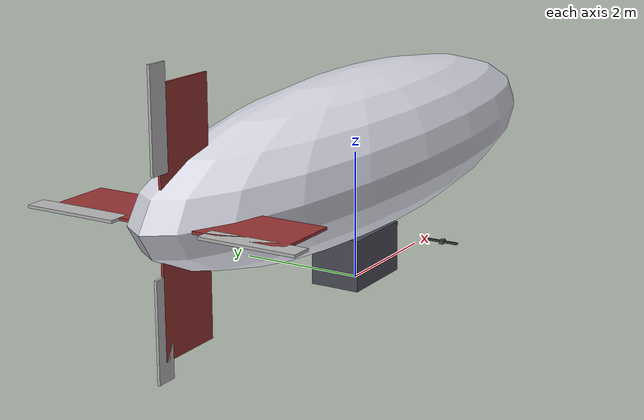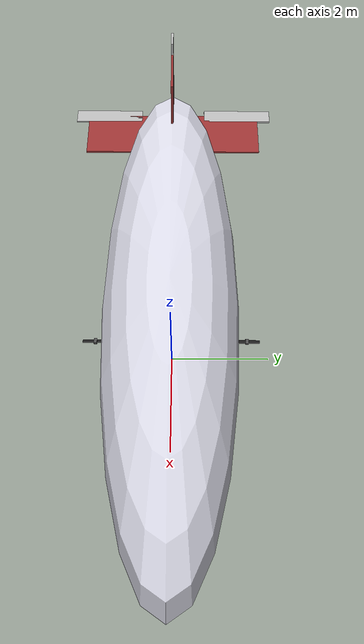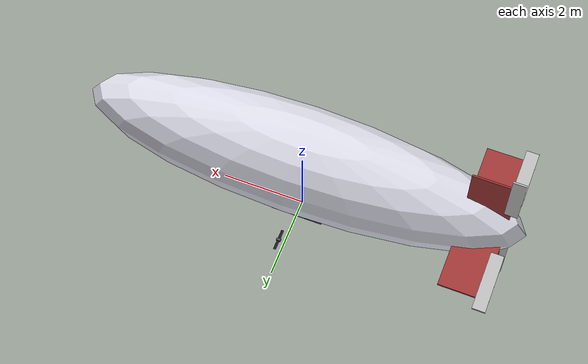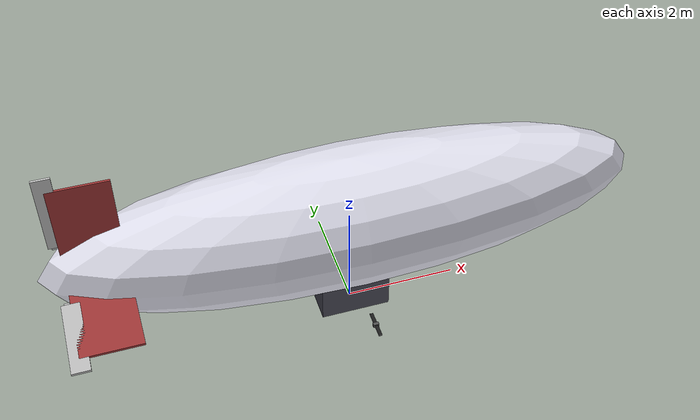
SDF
<?xml version="1.0" encoding="UTF-8"?>
<!--
  The fixed-thruster airship with hull drag and rotational damping: the drag
  block of airship_vectored_independent_drag, on airship_fixed. No added
  mass; airship_fixed_am_drag has both.
-->
<sdf version="1.10">
  <model name="airship_fixed_drag">
    <include merge="true">
      <uri>model://airship_fixed</uri>
    </include>
    <plugin filename="gz-sim-hydrodynamics-system" name="gz::sim::systems::Hydrodynamics">
      <link_name>base_link</link_name>
      <!-- Quadratic drag [N/(m/s)^2] -->
      <xUabsU>-0.2309</xUabsU>
      <yVabsV>-7.9926</yVabsV>
      <zWabsW>-7.9926</zWabsW>
      <!-- Rotational damping [N m/(rad/s)^2], with the linear roll term the
           very lightly damped roll mode needs [N m/(rad/s)] -->
      <kP>-6.4646</kP>
      <kPabsP>-29.0908</kPabsP>
      <mQabsQ>-193.9384</mQabsQ>
      <nRabsR>-193.9384</nRabsR>
      <xQabsU>-0.9467</xQabsU>
      <yPabsV>32.7697</yPabsV>
      <mUabsU>-0.4733</mUabsU>
      <mQabsU>-1.9407</mQabsU>
      <kVabsV>16.3848</kVabsV>
      <kPabsV>-67.1778</kPabsV>
      <disable_added_mass>true</disable_added_mass>
    </plugin>
  </model>
</sdf>

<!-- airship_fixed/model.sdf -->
<sdf version="1.10">
  <model name="airship_fixed">
    <include merge="true">
      <uri>model://airship_base</uri>
    </include>
    <link name="pod_starboard">
      <pose>0 -1.5 0.8125 0 0 0</pose>
      <inertial>
        <mass>0.398</mass>
        <inertia>
          <ixx>0.001</ixx>
          <iyy>0.001</iyy>
          <izz>0.001</izz>
        </inertia>
      </inertial>
      <visual name="pod_starboard_visual">
        <geometry>
          <box>
            <size>0.10 0.06 0.06</size>
          </box>
        </geometry>
        <material>
          <ambient>0.3 0.3 0.3 1</ambient>
          <diffuse>0.3 0.3 0.3 1</diffuse>
        </material>
      </visual>
    </link>
    <joint name="mount_starboard_joint" type="fixed">
      <parent>base_link</parent>
      <child>pod_starboard</child>
    </joint>
    <link name="prop_starboard">
      <pose degrees="true">0 -1.5 0.8125 0 90 0</pose>
      <inertial>
        <mass>0.1</mass>
        <inertia>
          <ixx>0.001</ixx>
          <iyy>0.001</iyy>
          <izz>0.001</izz>
        </inertia>
      </inertial>
      <visual name="prop_starboard_visual">
        <geometry>
          <box>
            <size>0.02 0.5 0.06</size>
          </box>
        </geometry>
        <material>
          <ambient>0.1 0.1 0.1 1</ambient>
          <diffuse>0.1 0.1 0.1 1</diffuse>
        </material>
      </visual>
    </link>
    <joint name="prop_starboard_joint" type="revolute">
      <parent>pod_starboard</parent>
      <child>prop_starboard</child>
      <axis>
        <xyz>0 0 1</xyz>
        <limit>
          <lower>-1e+16</lower>
          <upper>1e+16</upper>
        </limit>
        <dynamics>
          <spring_reference>0</spring_reference>
          <spring_stiffness>0</spring_stiffness>
        </dynamics>
      </axis>
    </joint>
    <link name="pod_port">
      <pose>0 1.5 0.8125 0 0 0</pose>
      <inertial>
        <mass>0.398</mass>
        <inertia>
          <ixx>0.001</ixx>
          <iyy>0.001</iyy>
          <izz>0.001</izz>
        </inertia>
      </inertial>
      <visual name="pod_port_visual">
        <geometry>
          <box>
            <size>0.10 0.06 0.06</size>
          </box>
        </geometry>
        <material>
          <ambient>0.3 0.3 0.3 1</ambient>
          <diffuse>0.3 0.3 0.3 1</diffuse>
        </material>
      </visual>
    </link>
    <joint name="mount_port_joint" type="fixed">
      <parent>base_link</parent>
      <child>pod_port</child>
    </joint>
    <link name="prop_port">
      <pose degrees="true">0 1.5 0.8125 0 90 0</pose>
      <inertial>
        <mass>0.1</mass>
        <inertia>
          <ixx>0.001</ixx>
          <iyy>0.001</iyy>
          <izz>0.001</izz>
        </inertia>
      </inertial>
      <visual name="prop_port_visual">
        <geometry>
          <box>
            <size>0.02 0.5 0.06</size>
          </box>
        </geometry>
        <material>
          <ambient>0.1 0.1 0.1 1</ambient>
          <diffuse>0.1 0.1 0.1 1</diffuse>
        </material>
      </visual>
    </link>
    <joint name="prop_port_joint" type="revolute">
      <parent>pod_port</parent>
      <child>prop_port</child>
      <axis>
        <xyz>0 0 1</xyz>
        <limit>
          <lower>-1e+16</lower>
          <upper>1e+16</upper>
        </limit>
        <dynamics>
          <spring_reference>0</spring_reference>
          <spring_stiffness>0</spring_stiffness>
        </dynamics>
      </axis>
    </joint>
    <plugin filename="gz-sim-multicopter-motor-model-system"
            name="gz::sim::systems::MulticopterMotorModel">
      <jointName>prop_starboard_joint</jointName>
      <linkName>prop_starboard</linkName>
      <turningDirection>ccw</turningDirection>
      <timeConstantUp>0.0125</timeConstantUp>
      <timeConstantDown>0.025</timeConstantDown>
      <maxRotVelocity>300.0</maxRotVelocity>
      <motorConstant>0.0002</motorConstant>
      <momentConstant>0.016</momentConstant>
      <commandSubTopic>command/motor_speed</commandSubTopic>
      <motorNumber>0</motorNumber>
      <rotorDragCoefficient>8.06428e-05</rotorDragCoefficient>
      <rollingMomentCoefficient>1e-06</rollingMomentCoefficient>
      <rotorVelocitySlowdownSim>10</rotorVelocitySlowdownSim>
      <motorType>velocity</motorType>
    </plugin>
    <plugin filename="gz-sim-multicopter-motor-model-system"
            name="gz::sim::systems::MulticopterMotorModel">
      <jointName>prop_port_joint</jointName>
      <linkName>prop_port</linkName>
      <turningDirection>cw</turningDirection>
      <timeConstantUp>0.0125</timeConstantUp>
      <timeConstantDown>0.025</timeConstantDown>
      <maxRotVelocity>300.0</maxRotVelocity>
      <motorConstant>0.0002</motorConstant>
      <momentConstant>0.016</momentConstant>
      <commandSubTopic>command/motor_speed</commandSubTopic>
      <motorNumber>1</motorNumber>
      <rotorDragCoefficient>8.06428e-05</rotorDragCoefficient>
      <rollingMomentCoefficient>1e-06</rollingMomentCoefficient>
      <rotorVelocitySlowdownSim>10</rotorVelocitySlowdownSim>
      <motorType>velocity</motorType>
    </plugin>
    <link name="flap_port">
      <pose>-4.65 1.363 2.050 0 0 0</pose>
      <inertial>
        <mass>0.001</mass>
        <inertia>
          <ixx>1e-05</ixx>
          <iyy>1e-05</iyy>
          <izz>1e-05</izz>
        </inertia>
      </inertial>
      <visual name="flap_port_visual">
        <pose>-0.150 0 0 0 0 0</pose>
        <geometry>
          <box>
            <size>0.30 1.40 0.04</size>
          </box>
        </geometry>
        <material>
        </material>
      </visual>
    </link>
    <joint name="flap_port_joint" type="revolute">
      <parent>base_link</parent>
      <child>flap_port</child>
      <axis>
        <xyz>0 1 0</xyz>
        <limit>
          <lower>-0.4363</lower>
          <upper>0.4363</upper>
        </limit>
        <dynamics>
          <damping>0.5</damping>
        </dynamics>
      </axis>
    </joint>
    <plugin filename="gz-sim-joint-position-controller-system"
            name="gz::sim::systems::JointPositionController">
      <joint_name>flap_port_joint</joint_name>
      <sub_topic>servo_1</sub_topic>
      <p_gain>10.0</p_gain>
      <i_gain>0</i_gain>
      <d_gain>0</d_gain>
    </plugin>
    <link name="flap_starboard">
      <pose>-4.65 -1.363 2.050 0 0 0</pose>
      <inertial>
        <mass>0.001</mass>
        <inertia>
          <ixx>1e-05</ixx>
          <iyy>1e-05</iyy>
          <izz>1e-05</izz>
        </inertia>
      </inertial>
      <visual name="flap_starboard_visual">
        <pose>-0.150 0 0 0 0 0</pose>
        <geometry>
          <box>
            <size>0.30 1.40 0.04</size>
          </box>
        </geometry>
        <material>
        </material>
      </visual>
    </link>
    <joint name="flap_starboard_joint" type="revolute">
      <parent>base_link</parent>
      <child>flap_starboard</child>
      <axis>
        <xyz>0 1 0</xyz>
        <limit>
          <lower>-0.4363</lower>
          <upper>0.4363</upper>
        </limit>
        <dynamics>
          <damping>0.5</damping>
        </dynamics>
      </axis>
    </joint>
    <plugin filename="gz-sim-joint-position-controller-system"
            name="gz::sim::systems::JointPositionController">
      <joint_name>flap_starboard_joint</joint_name>
      <sub_topic>servo_0</sub_topic>
      <p_gain>10.0</p_gain>
      <i_gain>0</i_gain>
      <d_gain>0</d_gain>
    </plugin>
    <link name="flap_top">
      <pose>-4.65 0.000 3.413 0 0 0</pose>
      <inertial>
        <mass>0.001</mass>
        <inertia>
          <ixx>1e-05</ixx>
          <iyy>1e-05</iyy>
          <izz>1e-05</izz>
        </inertia>
      </inertial>
      <visual name="flap_top_visual">
        <pose>-0.150 0 0 0 0 0</pose>
        <geometry>
          <box>
            <size>0.30 0.04 1.40</size>
          </box>
        </geometry>
        <material>
        </material>
      </visual>
    </link>
    <joint name="flap_top_joint" type="revolute">
      <parent>base_link</parent>
      <child>flap_top</child>
      <axis>
        <xyz>0 0 1</xyz>
        <limit>
          <lower>-0.4363</lower>
          <upper>0.4363</upper>
        </limit>
        <dynamics>
          <damping>0.5</damping>
        </dynamics>
      </axis>
    </joint>
    <plugin filename="gz-sim-joint-position-controller-system"
            name="gz::sim::systems::JointPositionController">
      <joint_name>flap_top_joint</joint_name>
      <sub_topic>servo_2</sub_topic>
      <p_gain>10.0</p_gain>
      <i_gain>0</i_gain>
      <d_gain>0</d_gain>
    </plugin>
    <link name="flap_bottom">
      <pose>-4.65 0.000 0.687 0 0 0</pose>
      <inertial>
        <mass>0.001</mass>
        <inertia>
          <ixx>1e-05</ixx>
          <iyy>1e-05</iyy>
          <izz>1e-05</izz>
        </inertia>
      </inertial>
      <visual name="flap_bottom_visual">
        <pose>-0.150 0 0 0 0 0</pose>
        <geometry>
          <box>
            <size>0.30 0.04 1.40</size>
          </box>
        </geometry>
        <material>
        </material>
      </visual>
    </link>
    <joint name="flap_bottom_joint" type="revolute">
      <parent>base_link</parent>
      <child>flap_bottom</child>
      <axis>
        <xyz>0 0 1</xyz>
        <limit>
          <lower>-0.4363</lower>
          <upper>0.4363</upper>
        </limit>
        <dynamics>
          <damping>0.5</damping>
        </dynamics>
      </axis>
    </joint>
    <plugin filename="gz-sim-joint-position-controller-system"
            name="gz::sim::systems::JointPositionController">
      <joint_name>flap_bottom_joint</joint_name>
      <sub_topic>servo_3</sub_topic>
      <p_gain>10.0</p_gain>
      <i_gain>0</i_gain>
      <d_gain>0</d_gain>
    </plugin>
    <plugin filename="gz-sim-lift-drag-system" name="gz::sim::systems::LiftDrag">
      <!-- fin_port -->
      <link_name>base_link</link_name>
      <air_density>1.225</air_density>
      <cp>-4.200 1.363 2.050</cp>
      <forward>1 0 0</forward>
      <upward>0 0 1</upward>
      <area>1.40</area>
      <a0>0</a0>
      <cla>6.400</cla>
      <cda>0.903</cda>
      <cma>0</cma>
      <alpha_stall>0.3</alpha_stall>
      <cla_stall>-1.35</cla_stall>
      <cda_stall>1.2</cda_stall>
      <cma_stall>0</cma_stall>
      <control_joint_name>flap_port_joint</control_joint_name>
      <control_joint_rad_to_cl>-2.466</control_joint_rad_to_cl>
    </plugin>
    <plugin filename="gz-sim-lift-drag-system" name="gz::sim::systems::LiftDrag">
      <!-- fin_starboard -->
      <link_name>base_link</link_name>
      <air_density>1.225</air_density>
      <cp>-4.200 -1.363 2.050</cp>
      <forward>1 0 0</forward>
      <upward>0 0 1</upward>
      <area>1.40</area>
      <a0>0</a0>
      <cla>6.400</cla>
      <cda>0.903</cda>
      <cma>0</cma>
      <alpha_stall>0.3</alpha_stall>
      <cla_stall>-1.35</cla_stall>
      <cda_stall>1.2</cda_stall>
      <cma_stall>0</cma_stall>
      <control_joint_name>flap_starboard_joint</control_joint_name>
      <control_joint_rad_to_cl>-2.466</control_joint_rad_to_cl>
    </plugin>
    <plugin filename="gz-sim-lift-drag-system" name="gz::sim::systems::LiftDrag">
      <!-- fin_top -->
      <link_name>base_link</link_name>
      <air_density>1.225</air_density>
      <cp>-4.200 0.000 3.413</cp>
      <forward>1 0 0</forward>
      <upward>0 1 0</upward>
      <area>1.40</area>
      <a0>0</a0>
      <cla>6.400</cla>
      <cda>0.903</cda>
      <cma>0</cma>
      <alpha_stall>0.3</alpha_stall>
      <cla_stall>-1.35</cla_stall>
      <cda_stall>1.2</cda_stall>
      <cma_stall>0</cma_stall>
      <control_joint_name>flap_top_joint</control_joint_name>
      <control_joint_rad_to_cl>2.466</control_joint_rad_to_cl>
    </plugin>
    <plugin filename="gz-sim-lift-drag-system" name="gz::sim::systems::LiftDrag">
      <!-- fin_bottom -->
      <link_name>base_link</link_name>
      <air_density>1.225</air_density>
      <cp>-4.200 0.000 0.687</cp>
      <forward>1 0 0</forward>
      <upward>0 1 0</upward>
      <area>1.40</area>
      <a0>0</a0>
      <cla>6.400</cla>
      <cda>0.903</cda>
      <cma>0</cma>
      <alpha_stall>0.3</alpha_stall>
      <cla_stall>-1.35</cla_stall>
      <cda_stall>1.2</cda_stall>
      <cma_stall>0</cma_stall>
      <control_joint_name>flap_bottom_joint</control_joint_name>
      <control_joint_rad_to_cl>2.466</control_joint_rad_to_cl>
    </plugin>
  </model>
</sdf>

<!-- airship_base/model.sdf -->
<sdf version="1.10">
  <model name="airship_base">
    <self_collide>false</self_collide>
    <static>false</static>
    <link name="base_link">
      <pose>0 0 0 0 0 0</pose>
      <inertial>
        <!-- Hull as a solid ellipsoid plus gondola box, parallel-axis about
             the combined CoM; pods/props carry their own mass in the
             wrapper, on the CoM plane. -->
        <pose>0 0 0.8125 0 0 0</pose>
        <mass>48.0</mass>
        <inertia>
          <ixx>35.8425</ixx>
          <iyy>101.01</iyy>
          <izz>76.5075</izz>
          <ixy>0</ixy>
          <ixz>0</ixz>
          <iyz>0</iyz>
        </inertia>
      </inertial>
      <!-- Buoyancy volume 39.2 m^3 -->
      <collision name="hull_collision">
        <pose>0 0 2.05 0 0 0</pose>
        <geometry>
          <box>
            <size>9.8 2 2</size>
          </box>
        </geometry>
      </collision>
      <!-- Ground contact; buoyancy volume 0.8 m^3 -->
      <collision name="gondola_collision">
        <pose>0 0 0.4 0 0 0</pose>
        <geometry>
          <box>
            <size>1.25 0.8 0.8</size>
          </box>
        </geometry>
        <surface>
          <contact>
            <ode>
              <min_depth>0.001</min_depth>
              <max_vel>0</max_vel>
            </ode>
          </contact>
          <friction>
            <ode />
          </friction>
        </surface>
      </collision>
      <visual name="hull_visual">
        <pose>0 0 2.05 0 0 0</pose>
        <geometry>
          <ellipsoid>
            <radii>5.25 1.25 1.25</radii>
          </ellipsoid>
        </geometry>
        <material>
          <ambient>0.85 0.85 0.9 1</ambient>
          <diffuse>0.85 0.85 0.9 1</diffuse>
          <specular>0.3 0.3 0.3 1</specular>
        </material>
      </visual>
      <visual name="gondola_visual">
        <pose>0 0 0.4 0 0 0</pose>
        <geometry>
          <box>
            <size>1.25 0.8 0.8</size>
          </box>
        </geometry>
        <material>
          <ambient>0.3 0.3 0.35 1</ambient>
          <diffuse>0.3 0.3 0.35 1</diffuse>
          <specular>0.2 0.2 0.2 1</specular>
        </material>
      </visual>
      <!-- Cruciform tail, visual only: no collision and no lift-drag, so it
           adds no weathercock stiffness, in the _aero variant either -->
      <visual name="fin_horizontal_visual">
        <pose>-4.3 0 2.05 0 0 0</pose>
        <geometry>
          <box>
            <size>1.0 3.6 0.04</size>
          </box>
        </geometry>
        <material>
          <ambient>0.6 0.2 0.2 1</ambient>
          <diffuse>0.6 0.2 0.2 1</diffuse>
        </material>
      </visual>
      <visual name="fin_vertical_visual">
        <pose>-4.3 0 2.05 0 0 0</pose>
        <geometry>
          <box>
            <size>1.0 0.04 3.6</size>
          </box>
        </geometry>
        <material>
          <ambient>0.6 0.2 0.2 1</ambient>
          <diffuse>0.6 0.2 0.2 1</diffuse>
        </material>
      </visual>
      <sensor name="air_pressure_sensor" type="air_pressure">
        <gz_frame_id>base_link</gz_frame_id>
        <always_on>1</always_on>
        <update_rate>50</update_rate>
        <air_pressure>
          <!-- Noise modeled after BMP390 -->
          <pressure>
            <noise type="gaussian">
              <mean>0</mean>
              <stddev>3</stddev>
            </noise>
          </pressure>
        </air_pressure>
      </sensor>
      <sensor name="magnetometer_sensor" type="magnetometer">
        <gz_frame_id>base_link</gz_frame_id>
        <always_on>1</always_on>
        <update_rate>100</update_rate>
        <magnetometer>
          <!-- TODO: update to fix units and coordinate system when we move past Harmonic -->
          <!-- See https://github.com/gazebosim/gz-sim/pull/2460 -->
          <!-- 3mgauss RMS: NOTE: noise is in tesla but sensor reports data in gauss -->
          <!-- Noise modeled after IIS2MDC -->
          <x>
            <noise type="gaussian">
              <stddev>0.0001</stddev>
            </noise>
          </x>
          <y>
            <noise type="gaussian">
              <stddev>0.0001</stddev>
            </noise>
          </y>
          <z>
            <noise type="gaussian">
              <stddev>0.0001</stddev>
            </noise>
          </z>
        </magnetometer>
      </sensor>
      <sensor name="imu_sensor" type="imu">
        <gz_frame_id>base_link</gz_frame_id>
        <always_on>1</always_on>
        <update_rate>250</update_rate>
        <imu>
          <angular_velocity>
            <!-- Noise modeled after IIM42653, 0.05 deg/s in rad/s -->
            <x>
              <noise type="gaussian">
                <mean>0.0</mean>
                <stddev>0.0008726646</stddev>
              </noise>
            </x>
            <y>
              <noise type="gaussian">
                <mean>0.0</mean>
                <stddev>0.0008726646</stddev>
              </noise>
            </y>
            <z>
              <noise type="gaussian">
                <mean>0.0</mean>
                <stddev>0.0008726646</stddev>
              </noise>
            </z>
          </angular_velocity>
          <linear_acceleration>
            <!-- Noise modeled after IIM42653, 0.65/0.70 mg-rms in m/s^2 -->
            <x>
              <noise type="gaussian">
                <mean>0.0</mean>
                <stddev>0.00637</stddev>
              </noise>
            </x>
            <y>
              <noise type="gaussian">
                <mean>0.0</mean>
                <stddev>0.00637</stddev>
              </noise>
            </y>
            <z>
              <noise type="gaussian">
                <mean>0.0</mean>
                <stddev>0.00686</stddev>
              </noise>
            </z>
          </linear_acceleration>
        </imu>
      </sensor>
      <sensor name="navsat_sensor" type="navsat">
        <gz_frame_id>base_link</gz_frame_id>
        <always_on>1</always_on>
        <update_rate>30</update_rate>
      </sensor>
    </link>
  </model>
</sdf>
